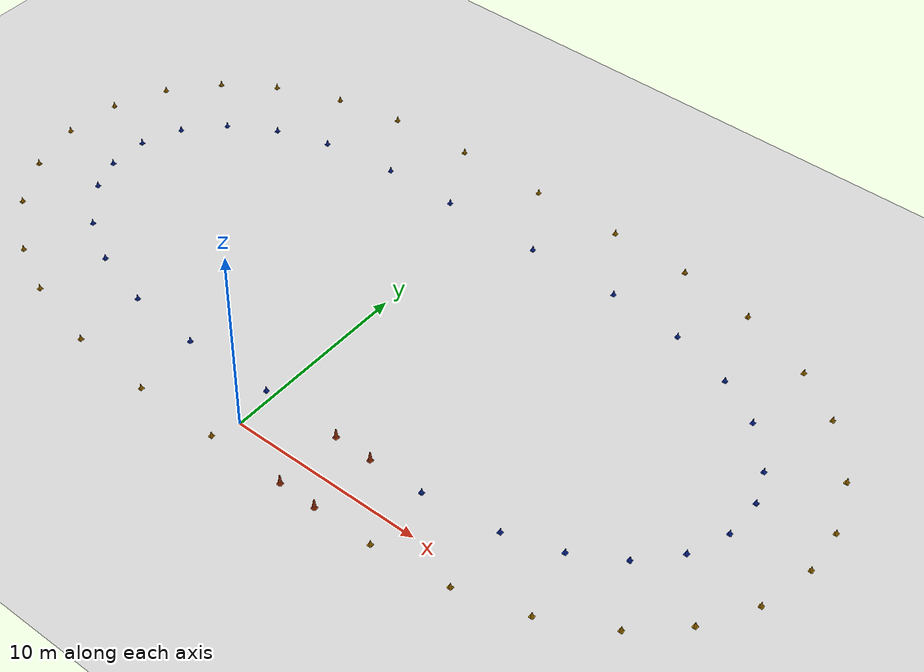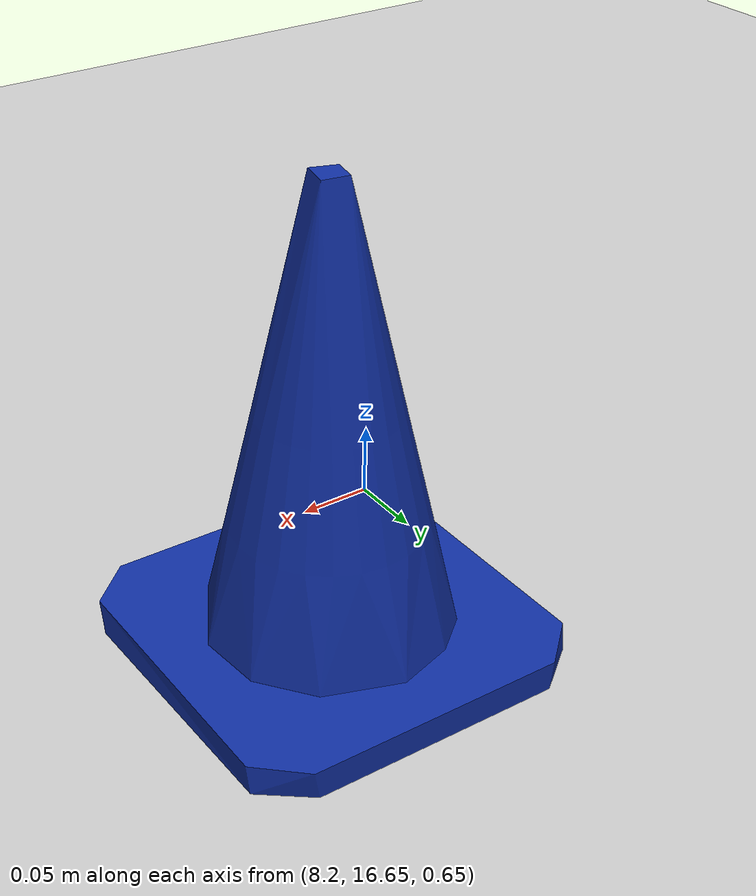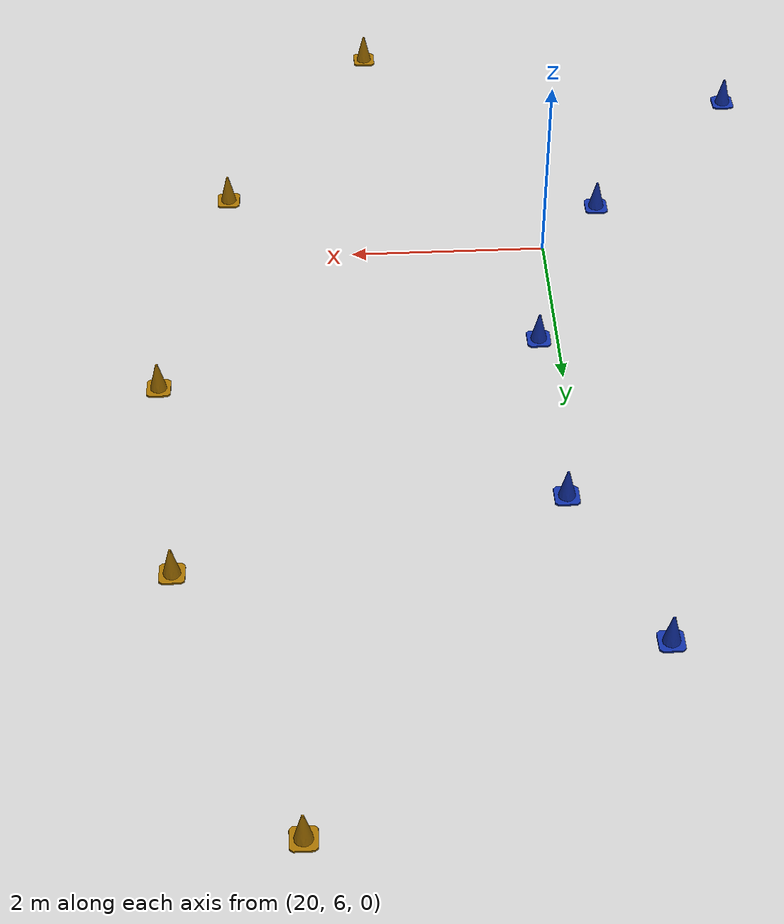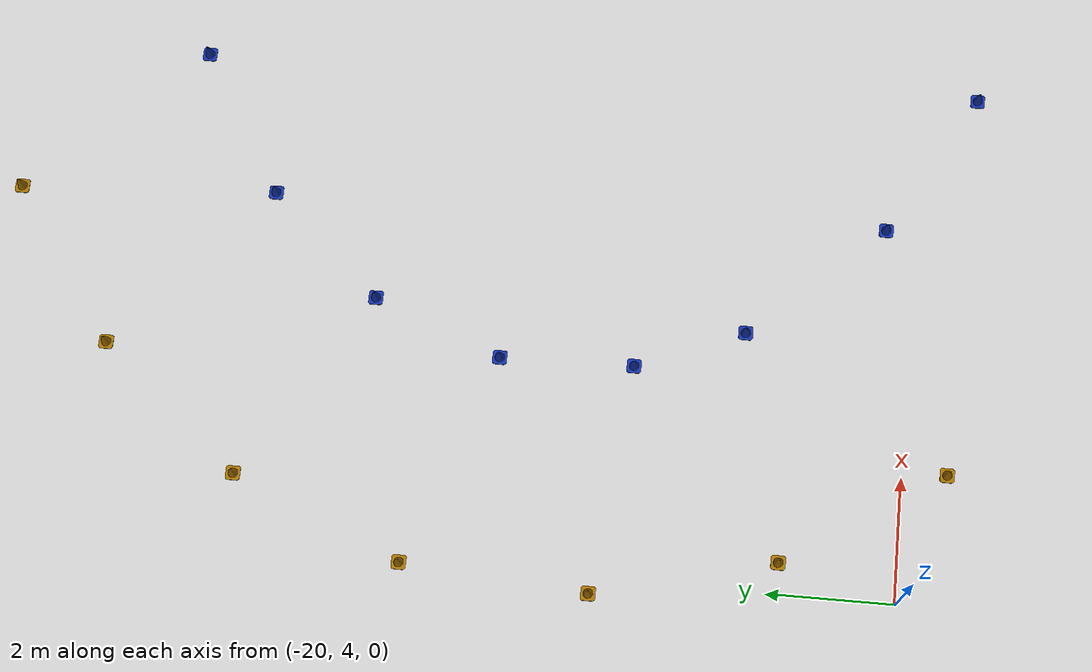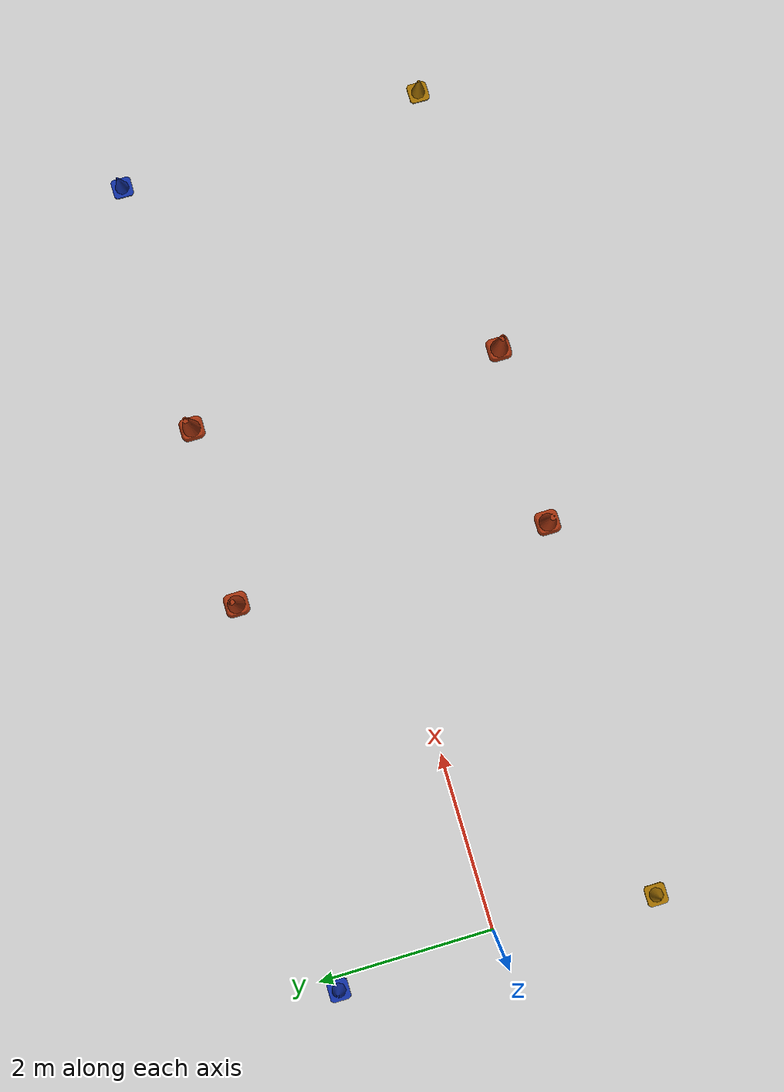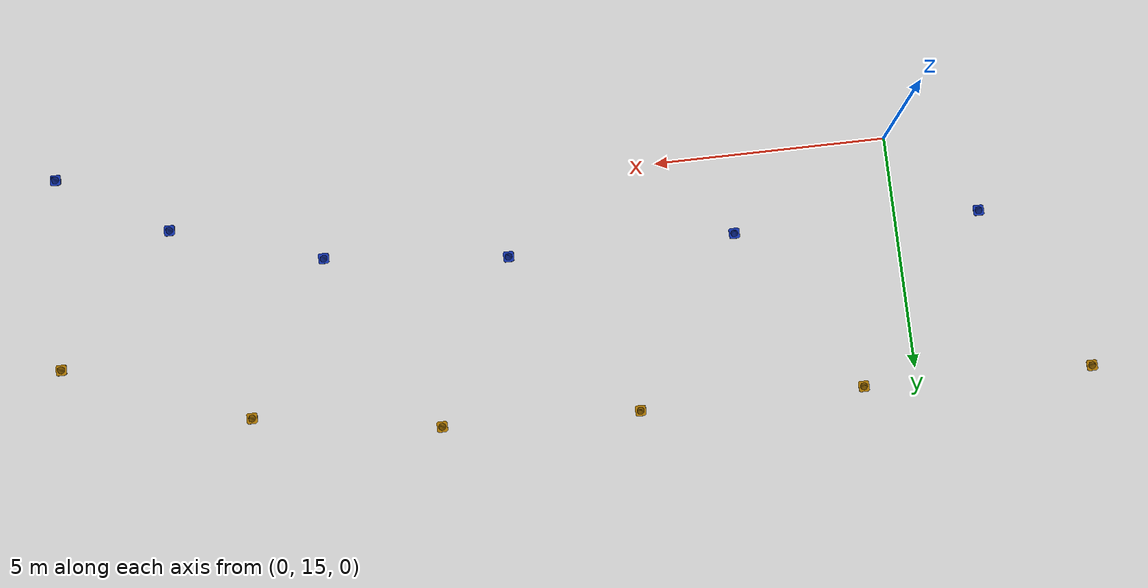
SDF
<sdf version='1.6'>
  <world name='small_oval'>
    <gui fullscreen='0'>
      <camera name='user_camera'>
        <pose frame=''>-40 40 20 0 0.667643 -1</pose>
        <view_controller>orbit</view_controller>
        <projection_type>perspective</projection_type>
      </camera>
    </gui>

    <!-- WORLD SETTINGS -->
    <scene>
      <ambient>1.0 1.0 1.0 1.0</ambient>
      <shadows>false</shadows>
    </scene>

    <spherical_coordinates>
      <heading_deg>180</heading_deg>

      <!-- Appleton Tower coordinates -->
      <latitude_deg>-27.690733</latitude_deg>
      <longitude_deg>152.656715</longitude_deg>
    </spherical_coordinates>

    <light name='sun' type='directional'>
      <cast_shadows>1</cast_shadows>
      <pose frame=''>0 0 10 0 -0 0</pose>
      <diffuse>0.8 0.8 0.8 1</diffuse>
      <specular>0.1 0.1 0.1 1</specular>
      <attenuation>
        <range>1000</range>
        <constant>0.9</constant>
        <linear>0.01</linear>
        <quadratic>0.001</quadratic>
      </attenuation>
      <direction>-0.5 0.5 -1</direction>
    </light>

    <!-- MODELS -->
    <include>
      <uri>model://ground_plane</uri>
      <pose>0.0 0.0 0.0 0 0 0</pose>
    </include>

    <include>
      <uri>model://small_oval</uri>
      <pose>0 0 0.5 0 0 0</pose>
    </include>

  </world>
</sdf>

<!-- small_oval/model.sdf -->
<sdf version='1.6'>
  <model name='track'>

    <include>
      <pose>9.07 1.66 0.15 0 0 0</pose>
      <uri>model://blue_cone</uri>
      <name>blue_cone_0</name>

      <covariance x="0.01" y="0.01" xy="0.0"/>

    </include>

    <include>
      <pose>12.93 2.12 0.15 0 0 0</pose>
      <uri>model://blue_cone</uri>
      <name>blue_cone_1</name>

      <covariance x="0.01" y="0.01" xy="0.0"/>

    </include>

    <include>
      <pose>15.63 2.99 0.15 0 0 0</pose>
      <uri>model://blue_cone</uri>
      <name>blue_cone_2</name>

      <covariance x="0.01" y="0.01" xy="0.0"/>

    </include>

    <include>
      <pose>17.9 4.37 0.15 0 0 0</pose>
      <uri>model://blue_cone</uri>
      <name>blue_cone_3</name>

      <covariance x="0.01" y="0.01" xy="0.0"/>

    </include>

    <include>
      <pose>19.5 6.15 0.15 0 0 0</pose>
      <uri>model://blue_cone</uri>
      <name>blue_cone_4</name>

      <covariance x="0.01" y="0.01" xy="0.0"/>

    </include>

    <include>
      <pose>20.29 8.18 0.15 0 0 0</pose>
      <uri>model://blue_cone</uri>
      <name>blue_cone_5</name>

      <covariance x="0.01" y="0.01" xy="0.0"/>

    </include>

    <include>
      <pose>20.25 10.27 0.15 0 0 0</pose>
      <uri>model://blue_cone</uri>
      <name>blue_cone_6</name>

      <covariance x="0.01" y="0.01" xy="0.0"/>

    </include>

    <include>
      <pose>19.58 11.96 0.15 0 0 0</pose>
      <uri>model://blue_cone</uri>
      <name>blue_cone_7</name>

      <covariance x="0.01" y="0.01" xy="0.0"/>

    </include>

    <include>
      <pose>17.7 14.06 0.15 0 0 0</pose>
      <uri>model://blue_cone</uri>
      <name>blue_cone_8</name>

      <covariance x="0.01" y="0.01" xy="0.0"/>

    </include>

    <include>
      <pose>15.38 15.41 0.15 0 0 0</pose>
      <uri>model://blue_cone</uri>
      <name>blue_cone_9</name>

      <covariance x="0.01" y="0.01" xy="0.0"/>

    </include>

    <include>
      <pose>12.19 16.37 0.15 0 0 0</pose>
      <uri>model://blue_cone</uri>
      <name>blue_cone_10</name>

      <covariance x="0.01" y="0.01" xy="0.0"/>

    </include>

    <include>
      <pose>8.31 16.77 0.15 0 0 0</pose>
      <uri>model://blue_cone</uri>
      <name>blue_cone_11</name>

      <covariance x="0.01" y="0.01" xy="0.0"/>

    </include>

    <include>
      <pose>3.52 16.81 0.15 0 0 0</pose>
      <uri>model://blue_cone</uri>
      <name>blue_cone_12</name>

      <covariance x="0.01" y="0.01" xy="0.0"/>

    </include>

    <include>
      <pose>-1.68 16.9 0.15 0 0 0</pose>
      <uri>model://blue_cone</uri>
      <name>blue_cone_13</name>

      <covariance x="0.01" y="0.01" xy="0.0"/>

    </include>

    <include>
      <pose>-5.54 16.9 0.15 0 0 0</pose>
      <uri>model://blue_cone</uri>
      <name>blue_cone_14</name>

      <covariance x="0.01" y="0.01" xy="0.0"/>

    </include>

    <include>
      <pose>-9.41 16.44 0.15 0 0 0</pose>
      <uri>model://blue_cone</uri>
      <name>blue_cone_15</name>

      <covariance x="0.01" y="0.01" xy="0.0"/>

    </include>

    <include>
      <pose>-12.1 15.57 0.15 0 0 0</pose>
      <uri>model://blue_cone</uri>
      <name>blue_cone_16</name>

      <covariance x="0.01" y="0.01" xy="0.0"/>

    </include>

    <include>
      <pose>-14.37 14.19 0.15 0 0 0</pose>
      <uri>model://blue_cone</uri>
      <name>blue_cone_17</name>

      <covariance x="0.01" y="0.01" xy="0.0"/>

    </include>

    <include>
      <pose>-15.97 12.41 0.15 0 0 0</pose>
      <uri>model://blue_cone</uri>
      <name>blue_cone_18</name>

      <covariance x="0.01" y="0.01" xy="0.0"/>

    </include>

    <include>
      <pose>-16.77 10.38 0.15 0 0 0</pose>
      <uri>model://blue_cone</uri>
      <name>blue_cone_19</name>

      <covariance x="0.01" y="0.01" xy="0.0"/>

    </include>

    <include>
      <pose>-16.73 8.29 0.15 0 0 0</pose>
      <uri>model://blue_cone</uri>
      <name>blue_cone_20</name>

      <covariance x="0.01" y="0.01" xy="0.0"/>

    </include>

    <include>
      <pose>-16.05 6.6 0.15 0 0 0</pose>
      <uri>model://blue_cone</uri>
      <name>blue_cone_21</name>

      <covariance x="0.01" y="0.01" xy="0.0"/>

    </include>

    <include>
      <pose>-14.18 4.5 0.15 0 0 0</pose>
      <uri>model://blue_cone</uri>
      <name>blue_cone_22</name>

      <covariance x="0.01" y="0.01" xy="0.0"/>

    </include>

    <include>
      <pose>-11.86 3.14 0.15 0 0 0</pose>
      <uri>model://blue_cone</uri>
      <name>blue_cone_23</name>

      <covariance x="0.01" y="0.01" xy="0.0"/>

    </include>

    <include>
      <pose>-8.66 2.19 0.15 0 0 0</pose>
      <uri>model://blue_cone</uri>
      <name>blue_cone_24</name>

      <covariance x="0.01" y="0.01" xy="0.0"/>

    </include>

    <include>
      <pose>-4.79 1.78 0.15 0 0 0</pose>
      <uri>model://blue_cone</uri>
      <name>blue_cone_25</name>

      <covariance x="0.01" y="0.01" xy="0.0"/>

    </include>

    <include>
      <pose>0.0 1.75 0.15 0 0 0</pose>
      <uri>model://blue_cone</uri>
      <name>blue_cone_26</name>

      <covariance x="0.01" y="0.01" xy="0.0"/>

    </include>

    <include>
      <pose>9.21 -1.84 0.15 0 0 0</pose>
      <uri>model://yellow_cone</uri>
      <name>yellow_cone_27</name>

      <covariance x="0.01" y="0.01" xy="0.0"/>

    </include>

    <include>
      <pose>13.11 -1.41 0.15 0 0 0</pose>
      <uri>model://yellow_cone</uri>
      <name>yellow_cone_28</name>

      <covariance x="0.01" y="0.01" xy="0.0"/>

    </include>

    <include>
      <pose>16.51 -0.44 0.15 0 0 0</pose>
      <uri>model://yellow_cone</uri>
      <name>yellow_cone_29</name>

      <covariance x="0.01" y="0.01" xy="0.0"/>

    </include>

    <include>
      <pose>19.64 1.29 0.15 0 0 0</pose>
      <uri>model://yellow_cone</uri>
      <name>yellow_cone_30</name>

      <covariance x="0.01" y="0.01" xy="0.0"/>

    </include>

    <include>
      <pose>21.78 3.34 0.15 0 0 0</pose>
      <uri>model://yellow_cone</uri>
      <name>yellow_cone_31</name>

      <covariance x="0.01" y="0.01" xy="0.0"/>

    </include>

    <include>
      <pose>23.26 5.87 0.15 0 0 0</pose>
      <uri>model://yellow_cone</uri>
      <name>yellow_cone_32</name>

      <covariance x="0.01" y="0.01" xy="0.0"/>

    </include>

    <include>
      <pose>23.87 8.7 0.15 0 0 0</pose>
      <uri>model://yellow_cone</uri>
      <name>yellow_cone_33</name>

      <covariance x="0.01" y="0.01" xy="0.0"/>

    </include>

    <include>
      <pose>23.67 11.02 0.15 0 0 0</pose>
      <uri>model://yellow_cone</uri>
      <name>yellow_cone_34</name>

      <covariance x="0.01" y="0.01" xy="0.0"/>

    </include>

    <include>
      <pose>22.6 13.73 0.15 0 0 0</pose>
      <uri>model://yellow_cone</uri>
      <name>yellow_cone_35</name>

      <covariance x="0.01" y="0.01" xy="0.0"/>

    </include>

    <include>
      <pose>20.32 16.44 0.15 0 0 0</pose>
      <uri>model://yellow_cone</uri>
      <name>yellow_cone_36</name>

      <covariance x="0.01" y="0.01" xy="0.0"/>

    </include>

    <include>
      <pose>17.85 18.11 0.15 0 0 0</pose>
      <uri>model://yellow_cone</uri>
      <name>yellow_cone_37</name>

      <covariance x="0.01" y="0.01" xy="0.0"/>

    </include>

    <include>
      <pose>13.97 19.56 0.15 0 0 0</pose>
      <uri>model://yellow_cone</uri>
      <name>yellow_cone_38</name>

      <covariance x="0.01" y="0.01" xy="0.0"/>

    </include>

    <include>
      <pose>10.05 20.18 0.15 0 0 0</pose>
      <uri>model://yellow_cone</uri>
      <name>yellow_cone_39</name>

      <covariance x="0.01" y="0.01" xy="0.0"/>

    </include>

    <include>
      <pose>5.91 20.31 0.15 0 0 0</pose>
      <uri>model://yellow_cone</uri>
      <name>yellow_cone_40</name>

      <covariance x="0.01" y="0.01" xy="0.0"/>

    </include>

    <include>
      <pose>1.22 20.33 0.15 0 0 0</pose>
      <uri>model://yellow_cone</uri>
      <name>yellow_cone_41</name>

      <covariance x="0.01" y="0.01" xy="0.0"/>

    </include>

    <include>
      <pose>-3.58 20.43 0.15 0 0 0</pose>
      <uri>model://yellow_cone</uri>
      <name>yellow_cone_42</name>

      <covariance x="0.01" y="0.01" xy="0.0"/>

    </include>

    <include>
      <pose>-7.89 20.23 0.15 0 0 0</pose>
      <uri>model://yellow_cone</uri>
      <name>yellow_cone_43</name>

      <covariance x="0.01" y="0.01" xy="0.0"/>

    </include>

    <include>
      <pose>-11.3 19.57 0.15 0 0 0</pose>
      <uri>model://yellow_cone</uri>
      <name>yellow_cone_44</name>

      <covariance x="0.01" y="0.01" xy="0.0"/>

    </include>

    <include>
      <pose>-14.6 18.23 0.15 0 0 0</pose>
      <uri>model://yellow_cone</uri>
      <name>yellow_cone_45</name>

      <covariance x="0.01" y="0.01" xy="0.0"/>

    </include>

    <include>
      <pose>-17.04 16.51 0.15 0 0 0</pose>
      <uri>model://yellow_cone</uri>
      <name>yellow_cone_46</name>

      <covariance x="0.01" y="0.01" xy="0.0"/>

    </include>

    <include>
      <pose>-18.94 14.26 0.15 0 0 0</pose>
      <uri>model://yellow_cone</uri>
      <name>yellow_cone_47</name>

      <covariance x="0.01" y="0.01" xy="0.0"/>

    </include>

    <include>
      <pose>-20.09 11.58 0.15 0 0 0</pose>
      <uri>model://yellow_cone</uri>
      <name>yellow_cone_48</name>

      <covariance x="0.01" y="0.01" xy="0.0"/>

    </include>

    <include>
      <pose>-20.32 8.69 0.15 0 0 0</pose>
      <uri>model://yellow_cone</uri>
      <name>yellow_cone_49</name>

      <covariance x="0.01" y="0.01" xy="0.0"/>

    </include>

    <include>
      <pose>-19.61 5.87 0.15 0 0 0</pose>
      <uri>model://yellow_cone</uri>
      <name>yellow_cone_50</name>

      <covariance x="0.01" y="0.01" xy="0.0"/>

    </include>

    <include>
      <pose>-18.05 3.38 0.15 0 0 0</pose>
      <uri>model://yellow_cone</uri>
      <name>yellow_cone_51</name>

      <covariance x="0.01" y="0.01" xy="0.0"/>

    </include>

    <include>
      <pose>-15.36 1.05 0.15 0 0 0</pose>
      <uri>model://yellow_cone</uri>
      <name>yellow_cone_52</name>

      <covariance x="0.01" y="0.01" xy="0.0"/>

    </include>

    <include>
      <pose>-12.7 -0.29 0.15 0 0 0</pose>
      <uri>model://yellow_cone</uri>
      <name>yellow_cone_53</name>

      <covariance x="0.01" y="0.01" xy="0.0"/>

    </include>

    <include>
      <pose>-8.75 -1.35 0.15 0 0 0</pose>
      <uri>model://yellow_cone</uri>
      <name>yellow_cone_54</name>

      <covariance x="0.01" y="0.01" xy="0.0"/>

    </include>

    <include>
      <pose>-4.4 -1.73 0.15 0 0 0</pose>
      <uri>model://yellow_cone</uri>
      <name>yellow_cone_55</name>

      <covariance x="0.01" y="0.01" xy="0.0"/>

    </include>

    <include>
      <pose>-0.0 -1.75 0.15 0 0 0</pose>
      <uri>model://yellow_cone</uri>
      <name>yellow_cone_56</name>

      <covariance x="0.01" y="0.01" xy="0.0"/>

    </include>

    <include>
      <pose>6.21 1.64 0.15 0 0 0</pose>
      <uri>model://big_cone</uri>
      <name>big_cone_57</name>

      <covariance x="0.01" y="0.01" xy="0.0"/>

    </include>

    <include>
      <pose>6.12 -1.86 0.15 0 0 0</pose>
      <uri>model://big_cone</uri>
      <name>big_cone_58</name>

      <covariance x="0.01" y="0.01" xy="0.0"/>

    </include>

    <include>
      <pose>4.21 1.69 0.15 0 0 0</pose>
      <uri>model://big_cone</uri>
      <name>big_cone_59</name>

      <covariance x="0.01" y="0.01" xy="0.0"/>

    </include>

    <include>
      <pose>4.12 -1.81 0.15 0 0 0</pose>
      <uri>model://big_cone</uri>
      <name>big_cone_60</name>

      <covariance x="0.01" y="0.01" xy="0.0"/>

    </include>

    <static>0</static>
    <allow_auto_disable>1</allow_auto_disable>
  </model>
</sdf>

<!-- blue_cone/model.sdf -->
<sdf version='1.6'>
  <model name='blue_cone'>
    <link name='link'>
      <pose frame=''>0 0 0 0 0 0</pose>
      <inertial>
        <inertia>
          <ixx>0.0016</ixx>
          <ixy>0</ixy>
          <ixz>0</ixz>
          <iyy>0.0016</iyy>
          <iyz>0</iyz>
          <izz>0.0010</izz>
        </inertia>
        <mass>0.45</mass>
      </inertial>
      <visual name='visual'>
        <geometry>
          <mesh>
            <uri>model://cone_blue.dae</uri>
          </mesh>
        </geometry>
        <cast_shadows>1</cast_shadows>
      </visual>
      <collision name='collision'>
        <max_contacts>3</max_contacts>
        <geometry>
          <mesh>
            <uri>model://cone_blue.dae</uri>
          </mesh>
        </geometry>
      </collision>
    </link>
  </model>
</sdf>

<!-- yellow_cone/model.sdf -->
<sdf version='1.6'>
  <model name='yellow_cone'>
    <link name='link'>
      <pose frame=''>0 0 0 0 0 0</pose>
      <inertial>
        <inertia>
          <ixx>0.0016</ixx>
          <ixy>0</ixy>
          <ixz>0</ixz>
          <iyy>0.0016</iyy>
          <iyz>0</iyz>
          <izz>0.0010</izz>
        </inertia>
        <mass>0.45</mass>
      </inertial>
      <visual name='visual'>
        <geometry>
          <mesh>
            <uri>model://cone_yellow.dae</uri>
          </mesh>
        </geometry>
        <cast_shadows>1</cast_shadows>
      </visual>
      <collision name='collision'>
        <max_contacts>3</max_contacts>
        <geometry>
          <mesh>
            <uri>model://cone_yellow.dae</uri>
          </mesh>
        </geometry>
      </collision>
    </link>
  </model>
</sdf>

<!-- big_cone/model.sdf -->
<sdf version='1.6'>
  <model name='big_cone'>
    <link name='link'>
      <pose frame=''>0 0 0 0 0 0</pose>
      <inertial>
        <inertia>
          <ixx>0.0016</ixx>
          <ixy>0</ixy>
          <ixz>0</ixz>
          <iyy>0.0016</iyy>
          <iyz>0</iyz>
          <izz>0.0010</izz>
        </inertia>
        <mass>0.45</mass>
      </inertial>
      <visual name='visual'>
        <geometry>
          <mesh>
            <uri>model://cone_big.dae</uri>
          </mesh>
        </geometry>
        <cast_shadows>1</cast_shadows>
      </visual>
      <collision name='collision'>
        <max_contacts>3</max_contacts>
        <geometry>
          <mesh>
            <uri>model://cone_big.dae</uri>
          </mesh>
        </geometry>
      </collision>
    </link>
  </model>
</sdf>
